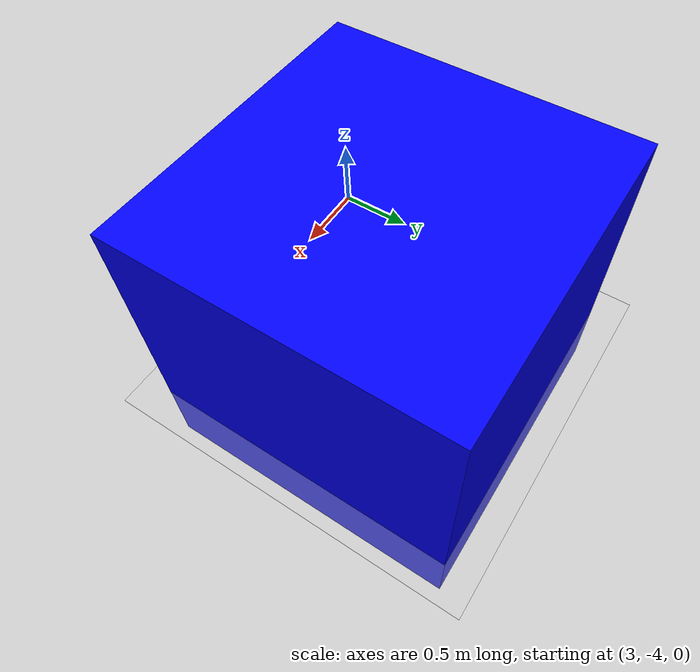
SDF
<?xml version="1.0" ?>
<sdf version="1.7">
    <world name="world">

        <light type="directional" name="sun">
            <cast_shadows>true</cast_shadows>
            <pose>0 0 10 0 0 0</pose>
            <diffuse>0.8 0.8 0.8 1</diffuse>
            <specular>0.2 0.2 0.2 1</specular>
            <attenuation>
                <range>1000</range>
                <constant>0.9</constant>
                <linear>0.01</linear>
                <quadratic>0.001</quadratic>
            </attenuation>
            <direction>-0.5 0.1 -0.9</direction>
        </light>

        <model name="ground_plane">
            <static>true</static>
            <link name="link">
                <collision name="collision">
                <geometry>
                    <plane>
                    <normal>0 0 1</normal>
                    </plane>
                </geometry>
                </collision>
                <visual name="visual">
                <geometry>
                    <plane>
                    <normal>0 0 1</normal>
                    <size>100 100</size>
                    </plane>
                </geometry>
                <material>
                    <ambient>0.8 0.8 0.8 1</ambient>
                    <diffuse>0.8 0.8 0.8 1</diffuse>
                    <specular>0.8 0.8 0.8 1</specular>
                </material>
                </visual>
            </link>
        </model>

        <model name="box1">
              <pose>4 -3 0.5 0 0 0</pose>
              <link name="box_link">
                <inertial>
                  <inertia>
                    <ixx>1</ixx>
                    <ixy>0</ixy>
                    <ixz>0</ixz>
                    <iyy>1</iyy>
                    <iyz>0</iyz>
                    <izz>1</izz>
                  </inertia>
                  <mass>1.0</mass>
                </inertial>
                <collision name="box_collision">
                  <geometry>
                    <box>
                      <size>1 1 1</size>
                    </box>
                  </geometry>
                </collision>

                <visual name="box_visual">
                  <geometry>
                    <box>
                      <size>2 2 2</size>
                    </box>
                  </geometry>
                  <material>
                    <ambient>0 0 0.5 1</ambient>
                    <diffuse>0 0 1 1</diffuse>
                    <specular>0 0 0.3 1</specular>
                  </material>
                </visual>
              </link>
        </model>
    </world>
</sdf>
